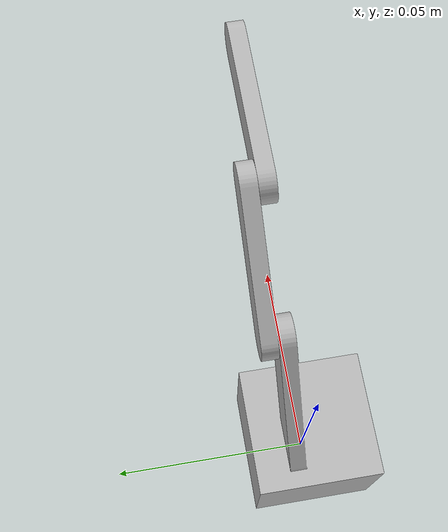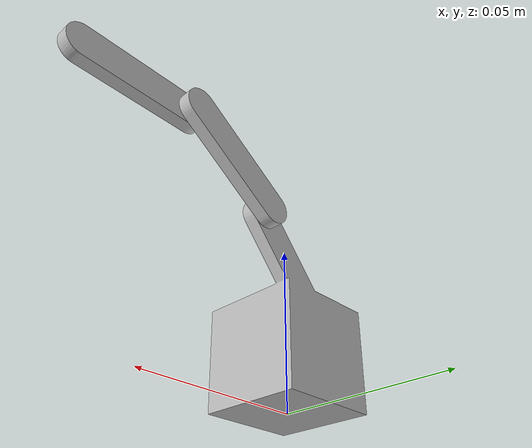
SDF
<?xml version="1.0" ?>
<sdf version="1.5">
  <model name="fusion_arm">
    <static>false</static>

    <!-- **************************** BASE_FOOTPRINT ********************************* -->

    <link name="base_footprint"/>

    <!-- **************************** BASE_LINK ********************************* -->

    <link name="base_link">
      <inertial>
        <pose>0.0003347701550377962 0.0002467868808562595 0.016426104833341764 0 0 0</pose>
        <inertia>
          <ixx>4.1e-05</ixx>
          <iyy>4.2e-05</iyy>
          <izz>3.3e-05</izz>
          <ixy>0.0</ixy>
          <iyz>0.0</iyz>
          <ixz>0.0</ixz>
        </inertia>
        <mass>0.22306073060929593</mass>
      </inertial>

      <visual name="base_visual">
        <pose> 0 0 0 0 0 0</pose>
        <geometry>
          <mesh>
            <uri>model://fusion_arm/meshes/base_link.stl</uri>
            <scale>0.001 0.001 0.001 </scale>
          </mesh>
        </geometry>
      </visual>

      <collision name="base_collision">
        <pose>0 0 0 0 0 0</pose>
        <geometry>
          <mesh>
            <uri>model://fusion_arm/meshes/base_link.stl</uri>
            <scale>0.001 0.001 0.001 </scale>
          </mesh>
        </geometry>
      </collision>
    </link>

    <!-- **************************** LINKS ********************************* -->

    <link name="link_1_1">
      <inertial>
        <pose>0.014335399579242975 0.0019995312441046563 0.01003709414126474 0 0 0</pose>
        <inertia>
          <ixx>1.8438E-06</ixx>
          <iyy>2.493E-06</iyy>
          <izz>1.1823E-06</izz>
          <ixy>0.0</ixy>
          <iyz>0.0</iyz>
          <ixz>0.0</ixz>
        </inertia>
        <mass>0.013456150233067987</mass>
      </inertial>

      <visual name="link_1_1_visual">
        <pose>0 0 0 0 0 0</pose>
        <geometry>
          <mesh>
            <uri>model://fusion_arm/meshes/link_1_1.stl</uri>
            <scale>0.001 0.001 0.001 </scale>
          </mesh>
        </geometry>
      </visual>

      <collision name="link_1_1_collision">
        <pose>0 0 0 0 0 0</pose>
        <geometry>
          <mesh>
            <uri>model://fusion_arm/meshes/link_1_1.stl</uri>
            <scale>0.001 0.001 0.001 </scale>
          </mesh>
        </geometry>
      </collision>
    </link>

    <link name="link_2_1">
      <inertial>
        <pose>0.01749956035430031 -0.0020004687558953117 -3.1822259197178404e-07 0 0 0</pose>
        <inertia>
          <ixx>0.0</ixx>
          <iyy>2.493E-06</iyy>
          <izz>1.1823E-06</izz>
          <ixy>0.0</ixy>
          <iyz>0.0</iyz>
          <ixz>0.0</ixz>
        </inertia>
        <mass>0.013456150233067987</mass>
      </inertial>

      <visual name="link_2_1_visual">
        <pose>0 0 0 0 0 0</pose>
        <geometry>
          <mesh>
            <uri>model://fusion_arm/meshes/link_2_1.stl</uri>
            <scale>0.001 0.001 0.001 </scale>
          </mesh>
        </geometry>
      </visual>

      <collision name="link_2_1_collision">
        <pose>0 0 0 0 0 0</pose>
        <geometry>
          <mesh>
            <uri>model://fusion_arm/meshes/link_2_1.stl</uri>
            <scale>0.001 0.001 0.001 </scale>
          </mesh>
        </geometry>
      </collision>
    </link>

    <!-- **************************** JOINTS ********************************* -->

    <joint name="rigid_1" type="continuous">
      <pose>0.015762 0.006955 0.054099 0 0 0</pose>
      <parent>base_link</parent>
      <child>link_1_1</child>
      <axis>
        <xyz>0.0 1.0 0.0</xyz>
      </axis>
    </joint>

    <joint name="rigid_2" type="continuous">
      <pose>0.028671 0.0 0.020075 0 0 0</pose>
      <parent>link_1_1</parent>
      <child>link_2_1</child>
      <axis>
        <xyz>0.0 1.0 0.0</xyz>
      </axis>
    </joint>

    <joint name="base_joint" type="fixed">
      <parent>base_footprint</parent>
      <child>base_link</child>
      <pose>0.0 0.0 0.1 0 0 0</pose>
      <axis>
        <xyz>0 0 1.0</xyz>
      </axis>
    </joint>

    <!-- *********************** JOINT STATE PUBLISHER *********************   -->

    <plugin name="fusion_arm_joint_state" filename="libgazebo_ros_joint_state_publisher.so">
      <ros>
        <remapping>~/out:=joint_states</remapping>
      </ros>
      <update_rate>30</update_rate>
      <joint_name>rigid_1</joint_name>
      <joint_name>rigid_2</joint_name>
    </plugin>

  </model>
</sdf>
